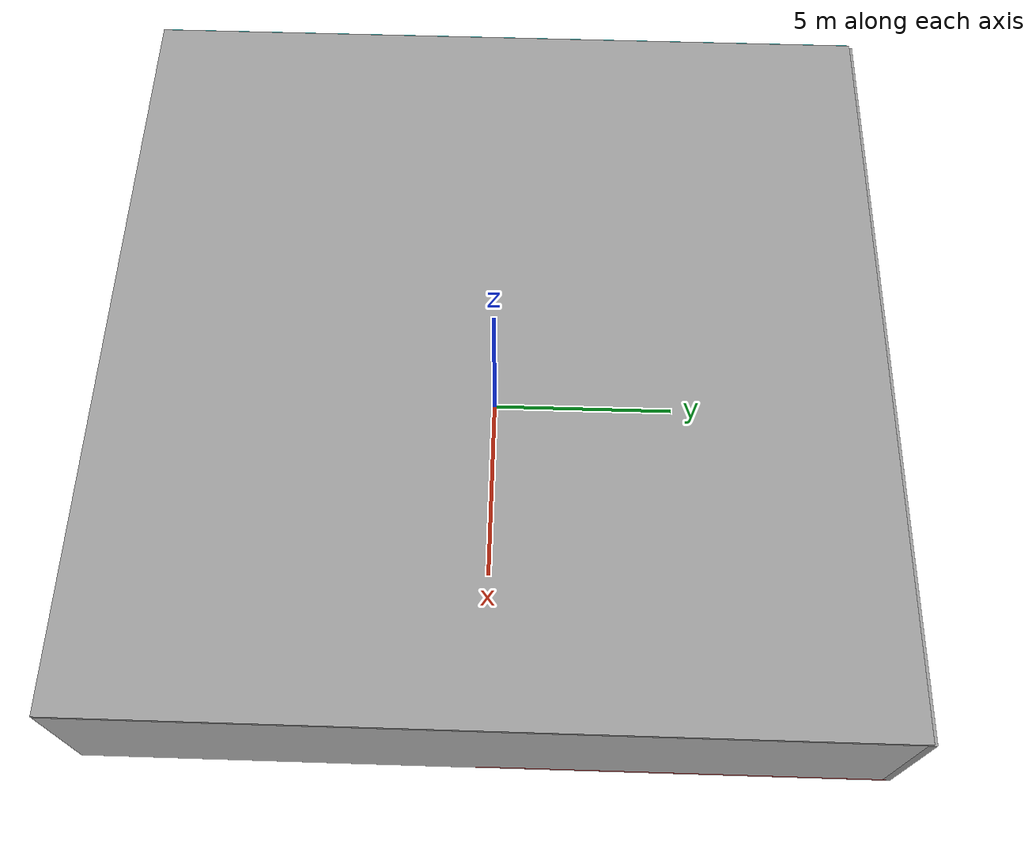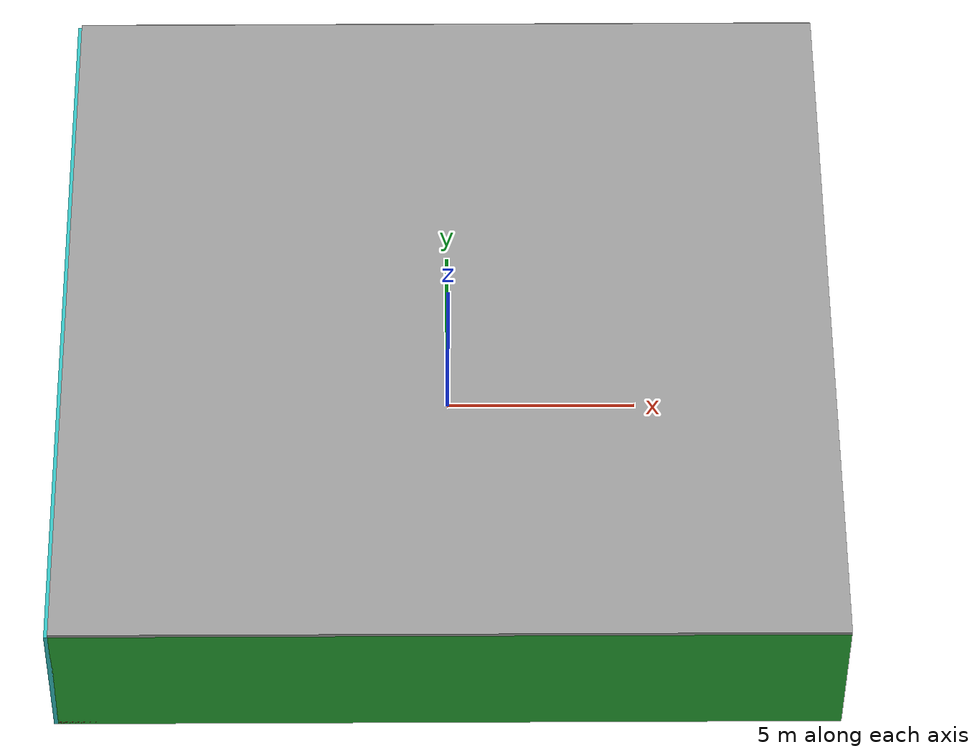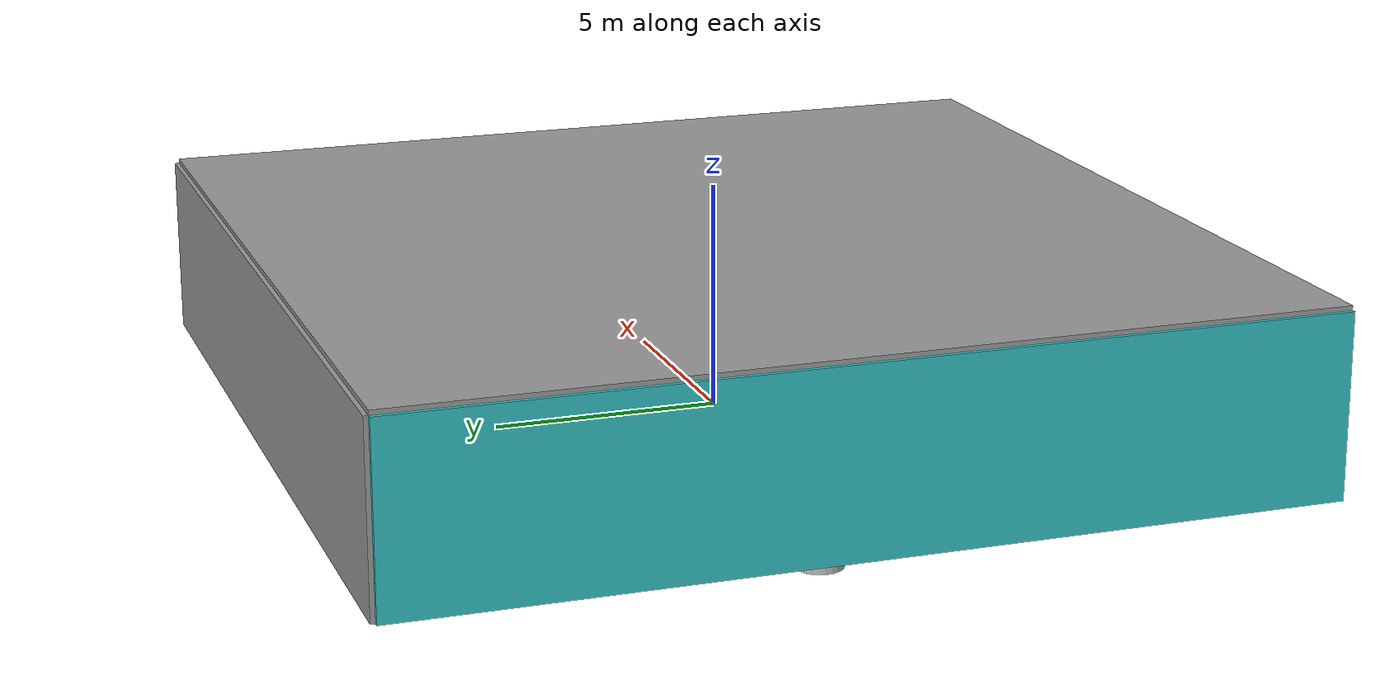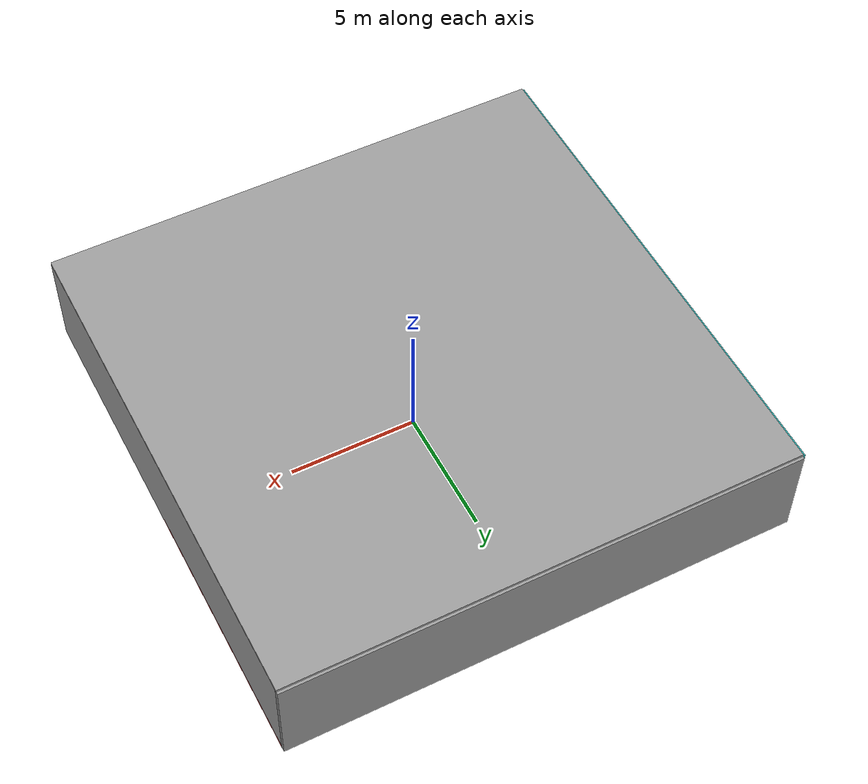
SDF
<sdf version="1.4">
 <world name="default">
  <physics type="ode">
   <max_step_size>0.001</max_step_size>
   <real_time_factor>1</real_time_factor>
   <real_time_update_rate>1000</real_time_update_rate>
   <gravity>0 0 -9.8</gravity>
  </physics>
  <scene><ambient>0.4 0.4 0.4 1</ambient><background>0.7 0.7 0.7 1</background><shadows>1</shadows></scene>
  <model name="Surrounding">
   <static>1</static>
   <link name="Ceiling">
    <collision name="Ceiling_Collision"><geometry><box><size>20 20 0.1</size></box></geometry></collision>
    <visual name="Ceiling_Visual">
     <geometry><box><size>20 20 0.1</size></box></geometry>
     <material>
      <script><uri>file://media/materials/scripts/gazebo.material</uri><name>Gazebo/Grey</name></script>
     </material>
    </visual>
    <pose>0 0 4.05 0 0 0</pose>
   </link>
   <link name="Wall_South">
    <collision name="Wall_South_Collision">
     <geometry><box><size>20 0 4</size></box></geometry>
     <pose>0 0 2 0 -0 0</pose>
    </collision>
    <visual name="Wall_South_Visual">
     <pose>0 0 2 0 -0 0</pose>
     <geometry><box><size>20 0 4</size></box></geometry>
     <material>
      <script><uri>file://media/materials/scripts/gazebo.material</uri><name>Gazebo/Green</name></script>
     </material>
    </visual>
    <velocity_decay><linear>0</linear><angular>0</angular></velocity_decay>
    <pose>0 -10 0 0 -0 0</pose>
   </link>
   <link name="Wall_East">
    <collision name="Wall_21_Collision">
     <geometry><box><size>20 0 4</size></box></geometry>
     <pose>0 0 2 0 -0 0</pose>
    </collision>
    <visual name="Wall_21_Visual">
     <pose>0 0 2 0 -0 0</pose>
     <geometry><box><size>20 0 4</size></box></geometry>
     <material>
      <script><uri>file://media/materials/scripts/gazebo.material</uri><name>Gazebo/JointAnchor</name></script>
     </material>
    </visual>
    <velocity_decay><linear>0</linear><angular>0</angular></velocity_decay>
    <pose>10 0 0 0 -0 1.5708</pose>
   </link>
   <link name="Wall_North">
    <collision name="Wall_22_Collision">
     <geometry><box><size>20 0.2 4</size></box></geometry>
     <pose>0 0 2 0 -0 0</pose>
    </collision>
    <visual name="Wall_22_Visual">
     <pose>0 0 2 0 -0 0</pose>
     <geometry><box><size>20 0.2 4</size></box></geometry>
     <material>
      <script><uri>file://media/materials/scripts/gazebo.material</uri><name>Gazebo/GreyGradientSky</name></script>
     </material>
    </visual>
    <velocity_decay><linear>0</linear><angular>0</angular></velocity_decay>
    <pose>0 10 0 0 -0 0</pose>
   </link>
   <link name="Wall_West">
    <collision name="Wall_23_Collision">
     <geometry><box><size>20 0.2 4</size></box></geometry>
     <pose>0 0 2 0 -0 0</pose>
    </collision>
    <visual name="Wall_23_Visual">
     <pose>0 0 2 0 -0 0</pose>
     <geometry><box><size>20 0.2 4</size></box></geometry>
     <material>
      <script>
       <uri>file://media/materials/scripts/gazebo.material</uri>
       <name>Gazebo/TurquoiseGlowOutline</name>
      </script>
     </material>
    </visual>
    <velocity_decay><linear>0</linear><angular>0</angular></velocity_decay>
    <pose>-10 0 0 0 0 -1.5708</pose>
   </link>
   <link name="Ground_link">
    <collision name="collision">
     <pose>0 0 .05 0 -0 0</pose>
     <geometry><box><size>20 20 0.1</size></box></geometry>
    </collision>
    <visual name="visual">
     <pose>0 0 .05 0 -0 0</pose>
     <geometry><box><size>20 20 0.1</size></box></geometry>
     <material>
      <script><uri>file://media/materials/scripts/gazebo.material</uri><name>Gazebo/Red</name></script>
     </material>
    </visual>
   </link>
   <static>1</static>
  </model>
  <spherical_coordinates>
   <surface_model>EARTH_WGS84</surface_model>
   <latitude_deg>0</latitude_deg>
   <longitude_deg>0</longitude_deg>
   <elevation>0</elevation>
   <heading_deg>0</heading_deg>
  </spherical_coordinates>
  <light name="lightball_0" type="diffuse">
   <diffuse>0.8 0.8 0.8 1</diffuse>
   <specular>0.2 0.2 0.2 1</specular>
   <attenuation>
    <range>100</range>
    <constant>0.7</constant>
    <linear>0.01</linear>
    <quadratic>0.001</quadratic>
   </attenuation>
   <direction>-0.5 0.1 -0.9</direction>
   <pose>4.65393426383 -8.00519916063 1.23059173233 0 0 0</pose>
  </light>
  <light name="lightball_1" type="diffuse">
   <diffuse>0.8 0.8 0.8 1</diffuse>
   <specular>0.2 0.2 0.2 1</specular>
   <attenuation>
    <range>100</range>
    <constant>0.7</constant>
    <linear>0.01</linear>
    <quadratic>0.001</quadratic>
   </attenuation>
   <direction>-0.5 0.1 -0.9</direction>
   <pose>-6.71788884104 -1.81318049883 2.19892543597 0 0 0</pose>
  </light>
  <light name="lightball_2" type="diffuse">
   <diffuse>0.8 0.8 0.8 1</diffuse>
   <specular>0.2 0.2 0.2 1</specular>
   <attenuation>
    <range>100</range>
    <constant>0.7</constant>
    <linear>0.01</linear>
    <quadratic>0.001</quadratic>
   </attenuation>
   <direction>-0.5 0.1 -0.9</direction>
   <pose>-3.27187765131 1.66726008479 2.16821769137 0 0 0</pose>
  </light>
  <light name="lightball_3" type="diffuse">
   <diffuse>0.8 0.8 0.8 1</diffuse>
   <specular>0.2 0.2 0.2 1</specular>
   <attenuation>
    <range>100</range>
    <constant>0.7</constant>
    <linear>0.01</linear>
    <quadratic>0.001</quadratic>
   </attenuation>
   <direction>-0.5 0.1 -0.9</direction>
   <pose>7.49916707617 8.34115615574 0.50795745938 0 0 0</pose>
  </light>
  <light name="lightball_4" type="diffuse">
   <diffuse>0.8 0.8 0.8 1</diffuse>
   <specular>0.2 0.2 0.2 1</specular>
   <attenuation>
    <range>100</range>
    <constant>0.7</constant>
    <linear>0.01</linear>
    <quadratic>0.001</quadratic>
   </attenuation>
   <direction>-0.5 0.1 -0.9</direction>
   <pose>-8.89946375084 -9.03349957244 3.50711367325 0 0 0</pose>
  </light>
  <light name="lightball_5" type="diffuse">
   <diffuse>0.8 0.8 0.8 1</diffuse>
   <specular>0.2 0.2 0.2 1</specular>
   <attenuation>
    <range>100</range>
    <constant>0.7</constant>
    <linear>0.01</linear>
    <quadratic>0.001</quadratic>
   </attenuation>
   <direction>-0.5 0.1 -0.9</direction>
   <pose>-0.667823390389 -2.79963827821 2.56928528155 0 0 0</pose>
  </light>
  <light name="lightball_6" type="diffuse">
   <diffuse>0.8 0.8 0.8 1</diffuse>
   <specular>0.2 0.2 0.2 1</specular>
   <attenuation>
    <range>100</range>
    <constant>0.7</constant>
    <linear>0.01</linear>
    <quadratic>0.001</quadratic>
   </attenuation>
   <direction>-0.5 0.1 -0.9</direction>
   <pose>9.07691765776 -6.96616245177 1.45577960008 0 0 0</pose>
  </light>
  <light name="lightball_7" type="diffuse">
   <diffuse>0.8 0.8 0.8 1</diffuse>
   <specular>0.2 0.2 0.2 1</specular>
   <attenuation>
    <range>100</range>
    <constant>0.7</constant>
    <linear>0.01</linear>
    <quadratic>0.001</quadratic>
   </attenuation>
   <direction>-0.5 0.1 -0.9</direction>
   <pose>-4.25352808669 0.987036783149 3.65072178775 0 0 0</pose>
  </light>
  <light name="lightball_8" type="diffuse">
   <diffuse>0.8 0.8 0.8 1</diffuse>
   <specular>0.2 0.2 0.2 1</specular>
   <attenuation>
    <range>100</range>
    <constant>0.7</constant>
    <linear>0.01</linear>
    <quadratic>0.001</quadratic>
   </attenuation>
   <direction>-0.5 0.1 -0.9</direction>
   <pose>2.96341096721 -8.82643961723 3.03213009098 0 0 0</pose>
  </light>
  <light name="lightball_9" type="diffuse">
   <diffuse>0.8 0.8 0.8 1</diffuse>
   <specular>0.2 0.2 0.2 1</specular>
   <attenuation>
    <range>100</range>
    <constant>0.7</constant>
    <linear>0.01</linear>
    <quadratic>0.001</quadratic>
   </attenuation>
   <direction>-0.5 0.1 -0.9</direction>
   <pose>-2.15711284229 -1.66043651798 1.20159198339 0 0 0</pose>
  </light>
  <include><uri>model://table</uri><pose>-6.82338290975 -5.04024086355 0 0 0 2.02727505791</pose></include>
  <include>
   <uri>model://textured_shapes</uri>
   <pose>-7.39211481833 1.45911959273 0 0 0 1.98705181809</pose>
  </include>
  <include>
   <uri>model://robocup_3Dsim_goal</uri>
   <pose>-4.15196246857 -3.91214445239 0 0 0 2.79083658174</pose>
  </include>
  <include><uri>model://table</uri><pose>-5.04346577192 1.91180255507 0 0 0 2.80262414502</pose></include>
  <include><uri>model://cabinet</uri><pose>-1.41097476441 -7.20662879987 0 0 0 1.47893894627</pose></include>
  <include><uri>model://cabinet</uri><pose>4.51014958521 4.1881046573 0 0 0 0.877244482806</pose></include>
  <include><uri>model://cabinet</uri><pose>7.96176073406 -4.46041285819 0 0 0 0.319303771091</pose></include>
 </world>
</sdf>

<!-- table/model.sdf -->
<sdf version="1.5">
  <model name="table">
    <static>true</static>
    <link name="link">
      <collision name="surface">
        <pose>0 0 1.0 0 0 0</pose>
        <geometry>
          <box>
            <size>1.5 0.8 0.03</size>
          </box>
        </geometry>
        <surface>
          <friction>
            <ode>
              <mu>0.6</mu>
              <mu2>0.6</mu2>
            </ode>
          </friction>
        </surface>
      </collision>
      <visual name="visual1">
        <pose>0 0 1.0 0 0 0</pose>
        <geometry>
          <box>
            <size>1.5 0.8 0.03</size>
          </box>
        </geometry>
        <material>
          <script>
            <uri>model://media/materials/scripts/gazebo.material</uri>
            <name>Gazebo/Wood</name>
          </script>
        </material>
      </visual>
      <collision name="front_left_leg">
        <pose>0.68 0.38 0.5 0 0 0</pose>
        <geometry>
          <cylinder>
            <radius>0.02</radius>
            <length>1.0</length>
          </cylinder>
        </geometry>
      </collision>
      <visual name="front_left_leg">
        <pose>0.68 0.38 0.5 0 0 0</pose>
        <geometry>
          <cylinder>
            <radius>0.02</radius>
            <length>1.0</length>
          </cylinder>
        </geometry>
        <material>
          <script>
            <uri>model://media/materials/scripts/gazebo.material</uri>
            <name>Gazebo/Grey</name>
          </script>
        </material>
      </visual>
      <collision name="front_right_leg">
        <pose>0.68 -0.38 0.5 0 0 0</pose>
        <geometry>
          <cylinder>
            <radius>0.02</radius>
            <length>1.0</length>
          </cylinder>
        </geometry>
      </collision>
      <visual name="front_right_leg">
        <pose>0.68 -0.38 0.5 0 0 0</pose>
        <geometry>
          <cylinder>
            <radius>0.02</radius>
            <length>1.0</length>
          </cylinder>
        </geometry>
        <material>
          <script>
            <uri>model://media/materials/scripts/gazebo.material</uri>
            <name>Gazebo/Grey</name>
          </script>
        </material>
      </visual>
      <collision name="back_right_leg">
        <pose>-0.68 -0.38 0.5 0 0 0</pose>
        <geometry>
          <cylinder>
            <radius>0.02</radius>
            <length>1.0</length>
          </cylinder>
        </geometry>
      </collision>
      <visual name="back_right_leg">
        <pose>-0.68 -0.38 0.5 0 0 0</pose>
        <geometry>
          <cylinder>
            <radius>0.02</radius>
            <length>1.0</length>
          </cylinder>
        </geometry>
        <material>
          <script>
            <uri>model://media/materials/scripts/gazebo.material</uri>
            <name>Gazebo/Grey</name>
          </script>
        </material>
      </visual>
      <collision name="back_left_leg">
        <pose>-0.68 0.38 0.5 0 0 0</pose>
        <geometry>
          <cylinder>
            <radius>0.02</radius>
            <length>1.0</length>
          </cylinder>
        </geometry>
      </collision>
      <visual name="back_left_leg">
        <pose>-0.68 0.38 0.5 0 0 0</pose>
        <geometry>
          <cylinder>
            <radius>0.02</radius>
            <length>1.0</length>
          </cylinder>
        </geometry>
        <material>
          <script>
            <uri>model://media/materials/scripts/gazebo.material</uri>
            <name>Gazebo/Grey</name>
          </script>
        </material>
      </visual>
    </link>
  </model>
</sdf>

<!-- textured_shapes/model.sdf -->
<sdf version="1.6">
  <model name="textured_shapes">
    <pose>0 0 0.5 0 0 0</pose>
    <link name="box">
      <pose>0 -1.5 0 0 0 0</pose>
      <collision name="collision">
        <geometry>
          <box>
            <size>1 1 1</size>
          </box>
        </geometry>
      </collision>
      <visual name="visual">
        <geometry>
          <box>
            <size>1 1 1</size>
          </box>
        </geometry>
        <material>
          <script>
            <uri>model://../model_source/models/textured_shapes/materials/scripts</uri>
            <uri>model://../model_source/models/textured_shapes/materials/textures</uri>
            <name>TexturedShape/Squares</name>
          </script>
        </material>
      </visual>
    </link>
    <link name="sphere">
      <collision name="collision">
        <geometry>
          <sphere>
            <radius>0.5</radius>
          </sphere>
        </geometry>
      </collision>
      <visual name="visual">
        <geometry>
          <sphere>
            <radius>0.5</radius>
          </sphere>
        </geometry>
        <material>
          <script>
            <uri>model://../model_source/models/textured_shapes/materials/scripts</uri>
            <uri>model://../model_source/models/textured_shapes/materials/textures</uri>
            <name>TexturedShape/Squares</name>
          </script>
        </material>
      </visual>
    </link>
    <link name="cylinder">
      <pose>0 1.5 0 0 0 0</pose>
      <collision name="collision">
        <geometry>
          <cylinder>
            <radius>0.5</radius>
            <length>1</length>
          </cylinder>
        </geometry>
      </collision>
      <visual name="visual">
        <geometry>
          <cylinder>
            <radius>0.5</radius>
            <length>1</length>
          </cylinder>
        </geometry>
        <material>
          <script>
            <uri>model://../model_source/models/textured_shapes/materials/scripts</uri>
            <uri>model://../model_source/models/textured_shapes/materials/textures</uri>
            <name>TexturedShape/Squares</name>
          </script>
        </material>
      </visual>
    </link>
  </model>
</sdf>

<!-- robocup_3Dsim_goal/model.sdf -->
<sdf version="1.5">
  <model name="robocup_3d_goal">
    <static>true</static>
    <link name="left_post">
      <pose>0 1.05 0.45 0 0 0</pose>
      <collision name="collision">
        <geometry>
          <cylinder>
            <radius>0.05</radius>
            <length>0.9</length>
          </cylinder>
        </geometry>
      </collision>
      <visual name="visual">
        <geometry>
          <cylinder>
            <radius>0.05</radius>
            <length>0.9</length>
          </cylinder>
        </geometry>
        <material>
          <script>
            <uri>file://media/materials/scripts/gazebo.material</uri>
            <name>Gazebo/ZincYellow</name>
          </script>
        </material>
      </visual>
    </link>
    <link name="left_support_horiz_lower">
      <pose>0.30 1.05 0.01 0 0 0</pose>
      <collision name="collision">
        <geometry>
          <box>
            <size>0.50 0.02 0.02</size>
          </box>
        </geometry>
      </collision>
      <visual name="visual">
        <geometry>
          <box>
            <size>0.50 0.02 0.02</size>
          </box>
        </geometry>
        <material>
          <script>
            <uri>file://media/materials/scripts/gazebo.material</uri>
            <name>Gazebo/White</name>
          </script>
        </material>
      </visual>
    </link>
    <link name="left_support_horiz_upper">
      <pose>0.30 1.05 0.79 0 0 0</pose>
      <collision name="collision">
        <geometry>
          <box>
            <size>0.50 0.02 0.02</size>
          </box>
        </geometry>
      </collision>
      <visual name="visual">
        <geometry>
          <box>
            <size>0.50 0.02 0.02</size>
          </box>
        </geometry>
        <material>
          <script>
            <uri>file://media/materials/scripts/gazebo.material</uri>
            <name>Gazebo/White</name>
          </script>
        </material>
      </visual>
    </link>
    <link name="left_support_vertical">
      <pose>0.56 1.05 0.4 0 1.5708 0</pose>
      <collision name="collision">
        <geometry>
          <box>
            <size>0.80 0.02 0.02</size>
          </box>
        </geometry>
      </collision>
      <visual name="visual">
        <geometry>
          <box>
            <size>0.80 0.02 0.02</size>
          </box>
        </geometry>
        <material>
          <script>
            <uri>file://media/materials/scripts/gazebo.material</uri>
            <name>Gazebo/White</name>
          </script>
        </material>
      </visual>
    </link>
    <link name="right_support_horiz_lower">
      <pose>0.30 -1.05 0.01 0 0 0</pose>
      <collision name="collision">
        <geometry>
          <box>
            <size>0.50 0.02 0.02</size>
          </box>
        </geometry>
      </collision>
      <visual name="visual">
        <geometry>
          <box>
            <size>0.50 0.02 0.02</size>
          </box>
        </geometry>
        <material>
          <script>
            <uri>file://media/materials/scripts/gazebo.material</uri>
            <name>Gazebo/White</name>
          </script>
        </material>
      </visual>
    </link>
    <link name="right_support_horiz_upper">
      <pose>0.30 -1.05 0.79 0 0 0</pose>
      <collision name="collision">
        <geometry>
          <box>
            <size>0.50 0.02 0.02</size>
          </box>
        </geometry>
      </collision>
      <visual name="visual">
        <geometry>
          <box>
            <size>0.50 0.02 0.02</size>
          </box>
        </geometry>
        <material>
          <script>
            <uri>file://media/materials/scripts/gazebo.material</uri>
            <name>Gazebo/White</name>
          </script>
        </material>
      </visual>
    </link>
    <link name="right_support_vertical">
      <pose>0.56 -1.05 0.4 0 1.5708 0</pose>
      <collision name="collision">
        <geometry>
          <box>
            <size>0.80 0.02 0.02</size>
          </box>
        </geometry>
      </collision>
      <visual name="visual">
        <geometry>
          <box>
            <size>0.80 0.02 0.02</size>
          </box>
        </geometry>
        <material>
          <script>
            <uri>file://media/materials/scripts/gazebo.material</uri>
            <name>Gazebo/White</name>
          </script>
        </material>
      </visual>
    </link>
    <link name="center_support_horiz_lower">
      <pose>0.56 0 0.01 0 1.5708 0</pose>
      <collision name="collision">
        <geometry>
          <box>
            <size>0.02 2.08 0.02</size>
          </box>
        </geometry>
      </collision>
      <visual name="visual">
        <geometry>
          <box>
            <size>0.02 2.08 0.02</size>
          </box>
        </geometry>
        <material>
          <script>
            <uri>file://media/materials/scripts/gazebo.material</uri>
            <name>Gazebo/White</name>
          </script>
        </material>
      </visual>
    </link>
    <link name="center_support_horiz_upper">
      <pose>0.56 0 0.79 0 1.5708 0</pose>
      <collision name="collision">
        <geometry>
          <box>
            <size>0.02 2.08 0.02</size>
          </box>
        </geometry>
      </collision>
      <visual name="visual">
        <geometry>
          <box>
            <size>0.02 2.08 0.02</size>
          </box>
        </geometry>
        <material>
          <script>
            <uri>file://media/materials/scripts/gazebo.material</uri>
            <name>Gazebo/White</name>
          </script>
        </material>
      </visual>
    </link>
    <link name="right_post">
      <pose>0 -1.05 0.45 0 0 0</pose>
      <collision name="collision">
        <geometry>
          <cylinder>
            <radius>0.05</radius>
            <length>0.9</length>
          </cylinder>
        </geometry>
      </collision>
      <visual name="visual">
        <geometry>
          <cylinder>
            <radius>0.05</radius>
            <length>0.9</length>
          </cylinder>
        </geometry>
        <material>
          <script>
            <uri>file://media/materials/scripts/gazebo.material</uri>
            <name>Gazebo/ZincYellow</name>
          </script>
        </material>
      </visual>
    </link>
    <link name="crossbar">
      <pose>0 0 0.85 1.57 1.57 0</pose>
      <collision name="collision">
        <geometry>
          <cylinder>
            <radius>0.05</radius>
            <length>2.0</length>
          </cylinder>
        </geometry>
      </collision>
      <visual name="visual">
        <geometry>
          <cylinder>
            <radius>0.05</radius>
            <length>2.0</length>
          </cylinder>
        </geometry>
        <material>
          <script>
            <uri>file://media/materials/scripts/gazebo.material</uri>
            <name>Gazebo/ZincYellow</name>
          </script>
        </material>
      </visual>
    </link>
    <link name="center_net">
      <pose>0.56 0 0.40 0 0 0</pose>
      <collision name="collision">
        <geometry>
          <box>
            <size>0.01 2.1 0.80</size>
          </box>
        </geometry>
      </collision>
      <visual name="visual">
        <geometry>
          <box>
            <size>0.01 2.1 0.80</size>
          </box>
        </geometry>
        <material>
          <script>
            <uri>model://../model_source/models/robocup09_spl_field/materials/scripts/</uri>
            <uri>model://../model_source/models/robocup09_spl_field/materials/textures/</uri>
            <name>RoboCup/Net</name>
          </script>
        </material>
      </visual>
    </link>
    <link name="left_net">
      <pose>0.30 1.05 0.40 0 0 0</pose>
      <collision name="collision">
        <geometry>
          <box>
            <size>0.50 0.01 0.76</size>
          </box>
        </geometry>
      </collision>
      <visual name="visual">
        <geometry>
          <box>
            <size>0.50 0.01 0.76</size>
          </box>
        </geometry>
        <material>
          <script>
            <uri>model://../model_source/models/robocup09_spl_field/materials/scripts/</uri>
            <uri>model://../model_source/models/robocup09_spl_field/materials/textures/</uri>
            <name>RoboCup/Net</name>
          </script>
        </material>
      </visual>
    </link>
    <link name="right_net">
      <pose>0.30 -1.05 0.40 0 0 0</pose>
      <collision name="collision">
        <geometry>
          <box>
            <size>0.50 0.01 0.76</size>
          </box>
        </geometry>
      </collision>
      <visual name="visual">
        <geometry>
          <box>
            <size>0.50 0.01 0.76</size>
          </box>
        </geometry>
        <material>
          <script>
            <uri>model://../model_source/models/robocup09_spl_field/materials/scripts/</uri>
            <uri>model://../model_source/models/robocup09_spl_field/materials/textures/</uri>
            <name>RoboCup/Net</name>
          </script>
        </material>
      </visual>
    </link>
  </model>
</sdf>

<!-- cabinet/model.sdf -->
<sdf version="1.5">
  <model name="cabinet">
    <static>true</static>
    <link name="cabinet_bottom_plate">
      <inertial>
        <pose>0 0 -1 0 0 0</pose>
        <inertia>
          <ixx>2.050000</ixx>
          <ixy>0</ixy>
          <ixz>0</ixz>
          <iyy>2.050000</iyy>
          <iyz>0</iyz>
          <izz>2.050000</izz>
        </inertia>
        <mass>25.000000</mass>
      </inertial>
      <collision name="cabinet_bottom_plate_geom">
        <pose>0 0 0.010000 0 0 0</pose>
        <geometry>
          <box>
            <size>0.450000 0.450000 0.020000</size>
          </box>
        </geometry>
      </collision>
      <visual name="cabinet_bottom_plate_geom_visual">
        <pose>0 0 0.010000 0 0 0</pose>
        <geometry>
          <box>
            <size>0.450000 0.450000 0.020000</size>
          </box>
        </geometry>
        <material>
          <script>
            <uri>model://media/materials/scripts/gazebo.material</uri>
            <name>Gazebo/Wood</name>
          </script>
        </material>
      </visual>
      <collision name="cabinet_bottom_plate_geom_cabinet_back_plate">
        <pose>0.235000 0 0.510000 0 0 0</pose>
        <geometry>
          <box>
            <size>0.020000 0.450000 1.020000</size>
          </box>
        </geometry>
      </collision>
      <visual name="cabinet_bottom_plate_geom_cabinet_back_plate_visual">
        <pose>0.235000 0 0.510000 0 0 0</pose>
        <geometry>
          <box>
            <size>0.020000 0.450000 1.020000</size>
          </box>
        </geometry>
        <material>
          <script>
            <uri>model://media/materials/scripts/gazebo.material</uri>
            <name>Gazebo/Wood</name>
          </script>
        </material>
      </visual>
      <collision name="cabinet_bottom_plate_geom_cabinet_left_plate">
        <pose>0 0.235000 0.510000 0 0 0</pose>
        <geometry>
          <box>
            <size>0.450000 0.020000 1.020000</size>
          </box>
        </geometry>
      </collision>
      <visual name="cabinet_bottom_plate_geom_cabinet_left_plate_visual">
        <pose>0 0.235000 0.510000 0 0 0</pose>
        <geometry>
          <box>
            <size>0.450000 0.020000 1.020000</size>
          </box>
        </geometry>
        <material>
          <script>
            <uri>model://media/materials/scripts/gazebo.material</uri>
            <name>Gazebo/Wood</name>
          </script>
        </material>
      </visual>
      <collision name="cabinet_bottom_plate_geom_cabinet_middle_plate">
        <pose>0 0 0.510000 0 0 0</pose>
        <geometry>
          <box>
            <size>0.450000 0.450000 0.020000</size>
          </box>
        </geometry>
      </collision>
      <visual name="cabinet_bottom_plate_geom_cabinet_middle_plate_visual">
        <pose>0 0 0.510000 0 0 0</pose>
        <geometry>
          <box>
            <size>0.450000 0.450000 0.020000</size>
          </box>
        </geometry>
        <material>
          <script>
            <uri>model://media/materials/scripts/gazebo.material</uri>
            <name>Gazebo/Wood</name>
          </script>
        </material>
      </visual>
      <collision name="cabinet_bottom_plate_geom_cabinet_right_plate">
        <pose>0 -0.235000 0.510000 0 0 0</pose>
        <geometry>
          <box>
            <size>0.450000 0.020000 1.020000</size>
          </box>
        </geometry>
      </collision>
      <visual name="cabinet_bottom_plate_geom_cabinet_right_plate_visual">
        <pose>0 -0.235000 0.510000 0 0 0</pose>
        <geometry>
          <box>
            <size>0.450000 0.020000 1.020000</size>
          </box>
        </geometry>
        <material>
          <script>
            <uri>model://media/materials/scripts/gazebo.material</uri>
            <name>Gazebo/Wood</name>
          </script>
        </material>
      </visual>
      <collision name="cabinet_bottom_plate_geom_cabinet_top_plate">
        <pose>0 0 1.010000 0 0 0</pose>
        <geometry>
          <box>
            <size>0.450000 0.450000 0.020000</size>
          </box>
        </geometry>
      </collision>
      <visual name="cabinet_bottom_plate_geom_cabinet_top_plate_visual">
        <pose>0 0 1.010000 0 0 0</pose>
        <geometry>
          <box>
            <size>0.450000 0.450000 0.020000</size>
          </box>
        </geometry>
        <material>
          <script>
            <uri>model://media/materials/scripts/gazebo.material</uri>
            <name>Gazebo/Wood</name>
          </script>
        </material>
      </visual>
    </link>
  </model>
</sdf>
